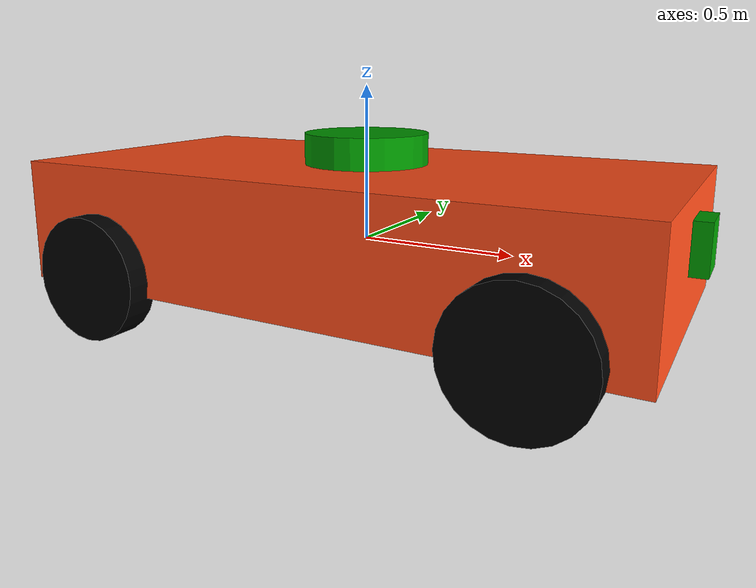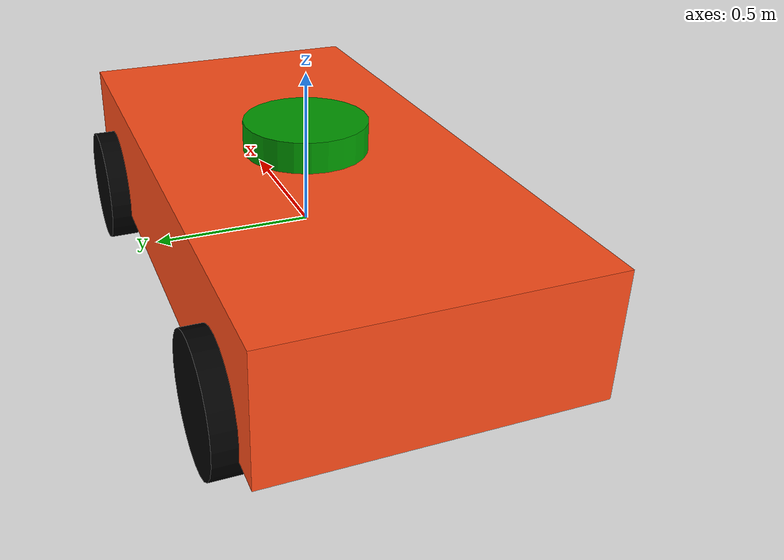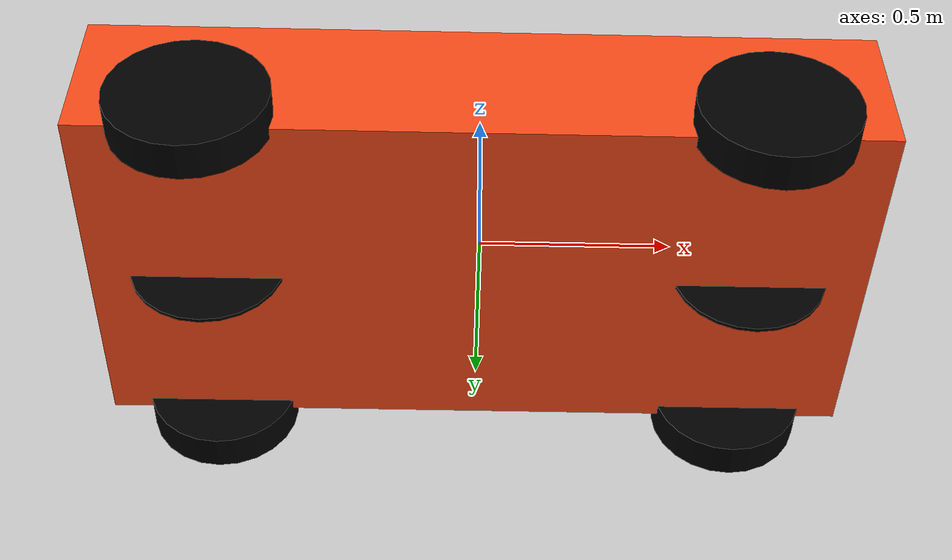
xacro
<?xml version="1.0"?>

<robot name="my_robot" xmlns:xacro="http://www.ros.org/wiki/xacro">

  <xacro:include filename="robot_core.xacro" />

  <xacro:include filename="ros2_control_bic.xacro" />

  <xacro:include filename="lidar.xacro" />
  <xacro:include filename="depth_camera.xacro" />

</robot>

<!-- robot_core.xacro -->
<robot xmlns:xacro="http://www.ros.org/wiki/xacro">

    <xacro:include filename="colors.xacro" />
    <xacro:include filename="inertial_macros.xacro" />

    <link name='base_link'>
        <xacro:inertial_box mass="20" x="2" y="1" z="0.4">
            <origin xyz="0 0 0.05" rpy="0 0 0"/>
        </xacro:inertial_box>

        <visual>
          <origin xyz="0 0 0.05" rpy="0 0 0"/>
          <geometry>
            <box size="2 1 0.4"/>
          </geometry>
          <material name="orange" />
        </visual>

        <collision>
          <origin xyz="0 0 0.05" rpy="0 0 0"/>
          <geometry>
            <box size="2 1 0.4"/>
          </geometry>
        </collision>
    </link>

    <gazebo reference="base_link">
        <material>Gazebo/Orange</material>
    </gazebo>

    <link name="virtual_rear_wheel">
      <visual>
        <origin xyz="0 0 0" rpy="0 1.5708 1.5708" />
        <geometry>
          <cylinder length="0.01" radius="0.2"/>
        </geometry>
        <material name="invisible"/>
      </visual>

      <collision>
        <origin xyz="0 0 0" rpy="0 1.5708 1.5708" />
        <geometry>
          <cylinder length="0.01" radius="0.2"/>
        </geometry>
        <material name="invisible"/>
      </collision>

      <xacro:inertial_cylinder mass="1.0" length="0.01" radius="0.2">
            <origin xyz="0 0 0" rpy="0 1.5708 1.5708"/>
      </xacro:inertial_cylinder>
    </link>

    <joint name="virtual_rear_wheel_joint" type="continuous">
      <parent link="base_link"/>
      <child link="virtual_rear_wheel"/>
      <origin xyz="-0.7 0 -0.1" rpy="0 0 0"/>
      <axis xyz="0 1 0" rpy="0 0 0" />
      <limit effort="100.0" velocity="100.0"/>
      <dynamics damping="0.2"/>
    </joint>

    <link name="right_wheel_rear">
      <collision>
        <origin xyz="0 0 0" rpy="0 1.5708 1.5708" />
        <geometry>
          <cylinder length="0.1" radius="0.2"/>
        </geometry>
        <surface>
          <friction>
            <ode>
              <mu>2.0</mu>
              <mu2>2.0</mu2>
              <fdir1>0 0 1</fdir1>
            </ode>
          </friction>
        </surface>
      </collision>

      <visual>
        <origin xyz="0 0 0" rpy="0 1.5708 1.5708" />
        <geometry>
          <cylinder length="0.1" radius="0.2"/>
        </geometry>
        <material name="black"/>
      </visual>

      <xacro:inertial_cylinder mass="1.0" length="0.1" radius="0.2">
            <origin xyz="0 0 0" rpy="0 1.5708 1.5708"/>
      </xacro:inertial_cylinder>

    </link>

    <gazebo reference="right_wheel_rear">
      <material>Gazebo/Black</material>
    </gazebo>

    <joint name="base_right_wheel_rear_joint" type="continuous">
      <parent link="base_link"/>
      <child link="right_wheel_rear"/>
      <origin xyz="-0.7 0.52 -0.1" rpy="0 0 0" />
      <axis xyz="0 1 0" rpy="0 0 0" />
      <limit effort="100.0" velocity="100.0"/>
      <dynamics damping="0.2" />
    </joint>

    <link name="left_wheel_rear">
      <collision>
        <origin xyz="0 0 0" rpy="0 1.5708 1.5708" />
        <geometry>
          <cylinder length="0.1" radius="0.2"/>
        </geometry>
        <surface>
          <friction>
            <ode>
              <mu>2.0</mu>
              <mu2>2.0</mu2>
              <fdir1>0 0 1</fdir1>
            </ode>
          </friction>
        </surface>
      </collision>

      <visual>
        <origin xyz="0 0 0" rpy="0 1.5708 1.5708" />
        <geometry>
          <cylinder length="0.1" radius="0.2"/>
        </geometry>
        <material name="black"/>
      </visual>

      <xacro:inertial_cylinder mass="1.0" length="0.1" radius="0.2">
            <origin xyz="0 0 0" rpy="0 1.5708 1.5708"/>
      </xacro:inertial_cylinder>

    </link>

    <gazebo reference="left_wheel_rear">
      <material>Gazebo/Black</material>
    </gazebo>

    <joint name="base_left_wheel_rear_joint" type="continuous">
      <parent link="base_link"/>
      <child link="left_wheel_rear"/>
      <origin xyz="-0.7 -0.52 -0.1" rpy="0 0 0" />
      <axis xyz="0 1 0" rpy="0 0 0" />
      <limit effort="100.0" velocity="100.0"/>
      <dynamics damping="0.2" />
    </joint>

    <link name="virtual_front_wheel">
      <visual>
        <origin xyz="0 0 0" rpy="0 1.5708 1.5708" />
        <geometry>
          <cylinder length="0.01" radius="0.2"/>
        </geometry>
        <material name="invisible"/>
      </visual>

      <collision>
        <origin xyz="0 0 0" rpy="0 1.5708 1.5708" />
        <geometry>
          <cylinder length="0.01" radius="0.2"/>
        </geometry>
        <material name="invisible"/>
      </collision>

      <xacro:inertial_cylinder mass="1.0" length="0.01" radius="0.2">
            <origin xyz="0 0 0" rpy="0 1.5708 1.5708"/>
      </xacro:inertial_cylinder>
    </link>

    <link name="virtual_steer">
      <visual>
        <origin xyz="0 0 0" rpy="0 0 0" />
        <geometry>
          <cylinder length="0.02" radius="0.04"/>
        </geometry>
        <material name="invisible"/>
      </visual>

      <collision>
        <origin xyz="0 0 0" rpy="0 0 0"/>
        <geometry>
          <cylinder radius="0.04" length="0.02"/>
        </geometry>
      </collision>

      <xacro:inertial_cylinder mass="0.4" length="0.02" radius="0.04">
        <origin xyz="0 0 0" rpy="0 0 0"/>
      </xacro:inertial_cylinder>
    </link>

    <joint name="virtual_steer_joint" type="revolute">
      <parent link="base_link"/>
      <child link="virtual_steer"/>
      <origin xyz="0.7 0 -0.1" rpy="0 0 0"/>
      <axis xyz="0 0 1" rpy="0 0 0" />
      <limit lower="-0.6" upper="0.6" velocity="25.0" effort="25.0"/>
    </joint>

    <joint name="virtual_front_wheel_joint" type="continuous">
      <parent link="virtual_steer"/>
      <child link="virtual_front_wheel"/>
      <origin xyz="0 0 0" rpy="0 0 0"/>
      <axis xyz="0 1 0" rpy="0 0 0" />
      <limit effort="100" velocity="100"/>
      <dynamics damping="0.1" friction="0.2"/>
    </joint>

    <link name="right_wheel_front">
      <collision>
        <origin xyz="0 0 0" rpy="0 1.5708 1.5708" />
        <geometry>
          <cylinder length="0.1" radius="0.2"/>
        </geometry>
          <surface>
            <friction>
              <ode>
                <mu>2.0</mu>
                <mu2>2.0</mu2>
                <fdir1>0 0 1</fdir1>
              </ode>
            </friction>
          </surface>
      </collision>

      <visual>
        <origin xyz="0 0 0" rpy="0 1.5708 1.5708" />
        <geometry>
          <cylinder length="0.1" radius="0.2"/>
        </geometry>
        <material name="black"/>
      </visual>

      <xacro:inertial_cylinder mass="1.0" length="0.1" radius="0.2">
        <origin xyz="0 0 0" rpy="0 1.5708 1.5708"/>
      </xacro:inertial_cylinder>

    </link>

    <gazebo reference="right_wheel_front">
      <material>Gazebo/Black</material>
    </gazebo>

    <link name="left_wheel_front">
      <collision>
        <origin xyz="0 0 0" rpy="0 1.5708 1.5708" />
        <geometry>
          <cylinder length="0.1" radius="0.2"/>
        </geometry>
          <surface>
            <friction>
              <ode>
                <mu>2.0</mu>
                <mu2>4.0</mu2>
                <fdir1>0 0 1</fdir1>
              </ode>
            </friction>
          </surface>
      </collision>

      <visual>
        <origin xyz="0 0 0" rpy="0 1.5708 1.5708" />
        <geometry>
          <cylinder length="0.1" radius="0.2"/>
        </geometry>
        <material name="black"/>
      </visual>

      <xacro:inertial_cylinder mass="1.0" length="0.1" radius="0.2">
          <origin xyz="0 0 0" rpy="0 1.5708 1.5708"/>
      </xacro:inertial_cylinder>
    </link>

    <gazebo reference="left_wheel_front">
      <material>Gazebo/Black</material>
    </gazebo>

    <link name="front_left_wheel_steering_link">
      <collision>
        <origin xyz="0 0 0" rpy="0 0 0"/>
        <geometry>
          <cylinder radius="0.04" length="0.2"/>
        </geometry>
      </collision>

      <visual>
        <origin xyz="0 0 0" rpy="0 0 0"/>
        <geometry>
          <cylinder radius="0.04" length="0.2"/>
        </geometry>
        <material name="black"/>
      </visual>

      <xacro:inertial_cylinder mass="0.4" length="0.2" radius="0.04">
        <origin xyz="0 0 0" rpy="0 0 0"/>
      </xacro:inertial_cylinder>
    </link>

    <link name="front_right_wheel_steering_link">
      <collision>
        <origin xyz="0 0 0" rpy="0 0 0"/>
        <geometry>
          <cylinder radius="0.04" length="0.2"/>
        </geometry>
      </collision>

      <visual>
        <origin xyz="0 0 0" rpy="0 0 0"/>
        <geometry>
          <cylinder radius="0.04" length="0.2"/>
        </geometry>
        <material name="black"/>
      </visual>

      <xacro:inertial_cylinder mass="0.4" length="0.2" radius="0.04">
        <origin xyz="0 0 0" rpy="0 0 0"/>
      </xacro:inertial_cylinder>
    </link>

    <joint name="front_left_wheel_steering_joint" type="revolute">
      <parent link="base_link"/>
      <child link="front_left_wheel_steering_link"/>
      <origin xyz="0.7 -0.52 -0.1" rpy="0 0 0"/>
      <axis xyz="0 0 1" rpy="0 0 0"/>
      <limit lower="-0.6" upper="0.6" velocity="1.0" effort="25"/>
    </joint>

    <joint name="front_right_wheel_steering_joint" type="revolute">
      <parent link="base_link"/>
      <child link="front_right_wheel_steering_link"/>
      <origin xyz="0.7 0.52 -0.1" rpy="0 0 0"/>
      <axis xyz="0 0 1" rpy="0 0 0"/>
      <limit lower="-0.6" upper="0.6" velocity="1.0" effort="25"/>
    </joint>

    <joint name="front_left_wheel_joint" type="continuous">
      <parent link="front_left_wheel_steering_link"/>
      <child link="left_wheel_front"/>
      <origin xyz="0 0 0" rpy="0 0 0"/>
      <axis xyz="0 1 0" rpy="0 0 0"/>
      <limit effort="100" velocity="10"/>
      <dynamics damping="0.1" friction="0.2"/>
    </joint>

    <joint name="front_right_wheel_joint" type="continuous">
      <parent link="front_right_wheel_steering_link"/>
      <child link="right_wheel_front"/>
      <origin xyz="0 0 0" rpy="0 0 0"/>
      <axis xyz="0 1 0" rpy="0 0 0"/>
      <limit effort="100" velocity="10"/>
      <dynamics damping="0.1" friction="0.2"/>
    </joint>

</robot>

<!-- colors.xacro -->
<robot xmlns:xacro="http://www.ros.org/wiki/xacro">

    <material name="grey">
        <color rgba="0.7 0.7 0.7 1"/>
    </material>

    <material name="green">
        <color rgba="0 0.6 0 1"/>
    </material>

    <material name="white">
        <color rgba="1 1 1 1"/>
    </material>

    <material name="black">
        <color rgba="0 0 0 1"/>
    </material>

    <material name="orange">
        <color rgba="1 0.3 0.1 1"/>
    </material>

    <material name="invisible">
        <color rgba="0.0 0.0 0.0 0.0"/>
    </material>

</robot>

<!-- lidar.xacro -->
<robot xmlns:xacro="http://www.ros.org/wiki/xacro">

    <joint name="laser_joint" type="fixed">
        <parent link="base_link"/>
        <child link="laser_frame"/>
        <origin xyz="0 0 0.3" rpy="0 0 0"/>
    </joint>

    <link name="laser_frame">
        <collision>
            <geometry>
            <cylinder length="0.1" radius="0.2"/>
            </geometry>
        </collision>

        <visual>
            <geometry>
            <cylinder length="0.1" radius="0.2"/>
            </geometry>
            <material name="green"/>
        </visual>

        <xacro:inertial_cylinder mass="1.0" length="0.1" radius="0.2">
            <origin xyz="0 0 0" rpy="0 0 0"/>
        </xacro:inertial_cylinder>
    </link>

    <gazebo reference="laser_frame">
        <material>Gazebo/Green</material>
        <sensor name="laser" type="ray">
            <pose>0 0 0 0 0 0</pose>
            <visualize>false</visualize>
            <update_rate>10</update_rate>

            <ray>
                <scan>
                    <horizontal>
                        <samples>360</samples>
                        <resolution>1</resolution>
                        <min_angle>-3.14</min_angle>
                        <max_angle>3.14</max_angle>
                    </horizontal>
                </scan>

                <range>
                    <min>1</min>
                    <max>60</max>
                    <resolution>0.01</resolution>
                </range>
            </ray>

            <plugin name="laser_controller" filename="libgazebo_ros_ray_sensor.so">
                <ros>
                    <argument>~/out:=scan</argument>
                </ros>
                <output_type>sensor_msgs/LaserScan</output_type>
                <frame_name>laser_frame</frame_name>
            </plugin>
        </sensor>
    </gazebo>

</robot>

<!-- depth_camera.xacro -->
<robot xmlns:xacro="http://www.ros.org/wiki/xacro">

    <joint name="camera_joint" type="fixed">
        <parent link="base_link"/>
        <child link="camera_link"/>
        <origin xyz="1 0 0.1" rpy="0 0 0"/>
    </joint>

    <link name="camera_link">
        <visual>
            <geometry>
                <box size="0.1 0.15 0.15"/>
            </geometry>
            <material name="green"/>
        </visual>
    </link>

    <joint name="camera_optical_joint" type="fixed">
        <parent link="camera_link"/>
        <child link="camera_link_optical"/>
        <origin xyz="0 0 0" rpy="${-pi/2} 0 ${-pi/2}"/>
    </joint>

    <link name="camera_link_optical"></link>

    <gazebo reference="camera_link">
        <material>Gazebo/Green</material>
        <gravity>true</gravity>

        <sensor name="camera" type="depth">
            <pose>0 0 0 0 0 0</pose>
            <visualize>false</visualize>
            <update_rate>10</update_rate>

            <camera>
                <horizontal_fov>1.204</horizontal_fov>
                <image>
                    <width>640</width>
                    <height>480</height>
                    <format>B8G8R8</format>
                </image>
                <clip>
                    <near>3</near>
                    <far>30.0</far>
                </clip>
            </camera>

            <plugin name="camera_controller" filename="libgazebo_ros_camera.so">
                <frame_name>camera_link_optical</frame_name>
                <min_depth>0.1</min_depth>
                <max_depth>100</max_depth>
            </plugin>
        </sensor>

        <sensor name="imu_sensor" type="imu">
            <plugin filename="libgazebo_ros_imu_sensor.so" name="imu">
                <ros>
                    <remapping>~/out:=imu</remapping>
                </ros>
                <initial_orientation_as_reference>false</initial_orientation_as_reference>
            </plugin>
            <always_on>true</always_on>
            <update_rate>100</update_rate>
            <visualize>true</visualize>
            <imu>
                <angular_velocity>
                    <x>
                        <noise type="gaussian">
                            <mean>0.0</mean>
                            <stddev>2e-4</stddev>
                            <bias_mean>0.0000075</bias_mean>
                            <bias_stddev>0.0000008</bias_stddev>
                        </noise>
                    </x>
                    <y>
                        <noise type="gaussian">
                            <mean>0.0</mean>
                            <stddev>2e-4</stddev>
                            <bias_mean>0.0000075</bias_mean>
                            <bias_stddev>0.0000008</bias_stddev>
                        </noise>
                    </y>
                    <z>
                        <noise type="gaussian">
                            <mean>0.0</mean>
                            <stddev>2e-4</stddev>
                            <bias_mean>0.0000075</bias_mean>
                            <bias_stddev>0.0000008</bias_stddev>
                        </noise>
                    </z>
                </angular_velocity>
                <linear_acceleration>
                    <x>
                        <noise type="gaussian">
                            <mean>0.0</mean>
                            <stddev>1.7e-2</stddev>
                            <bias_mean>0.1</bias_mean>
                            <bias_stddev>0.001</bias_stddev>
                        </noise>
                    </x>
                    <y>
                        <noise type="gaussian">
                            <mean>0.0</mean>
                            <stddev>1.7e-2</stddev>
                            <bias_mean>0.1</bias_mean>
                            <bias_stddev>0.001</bias_stddev>
                        </noise>
                    </y>
                    <z>
                        <noise type="gaussian">
                            <mean>0.0</mean>
                            <stddev>1.7e-2</stddev>
                            <bias_mean>0.1</bias_mean>
                            <bias_stddev>0.001</bias_stddev>
                        </noise>
                    </z>
                </linear_acceleration>
            </imu>
        </sensor>
    </gazebo>

</robot>
